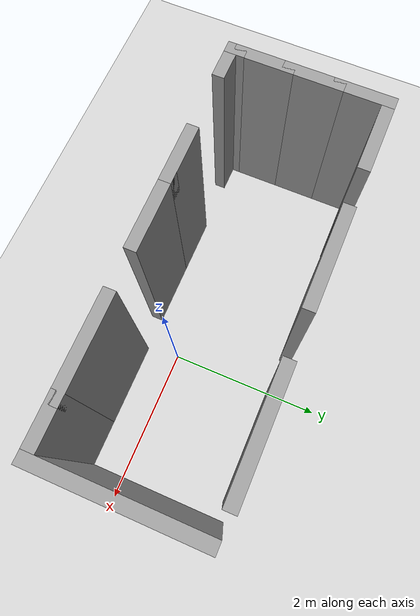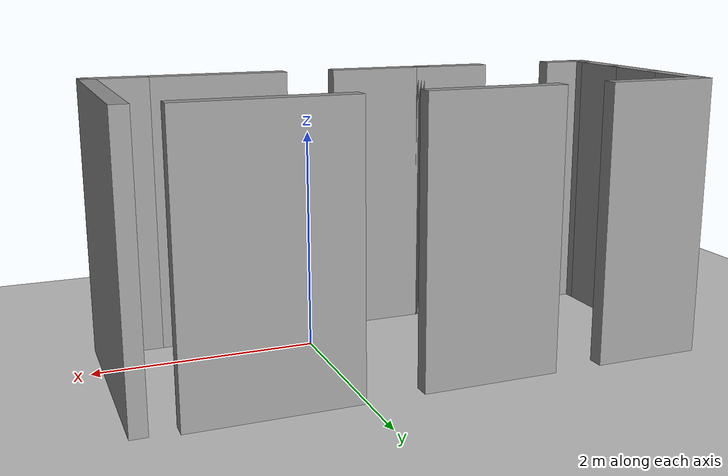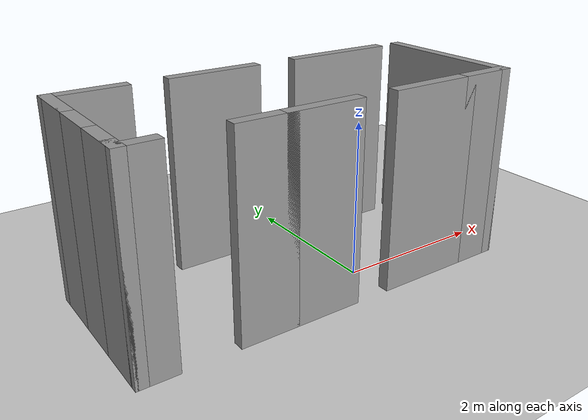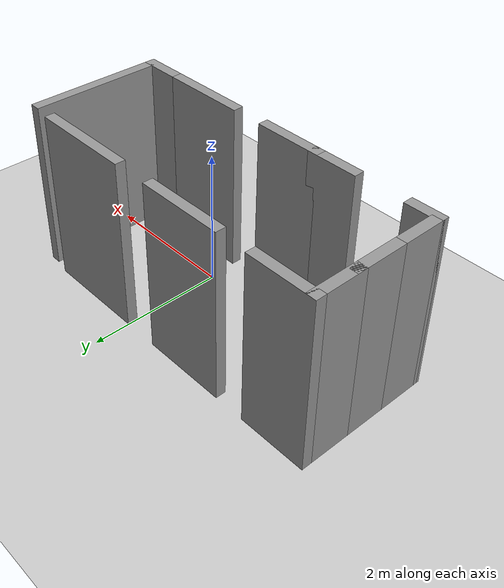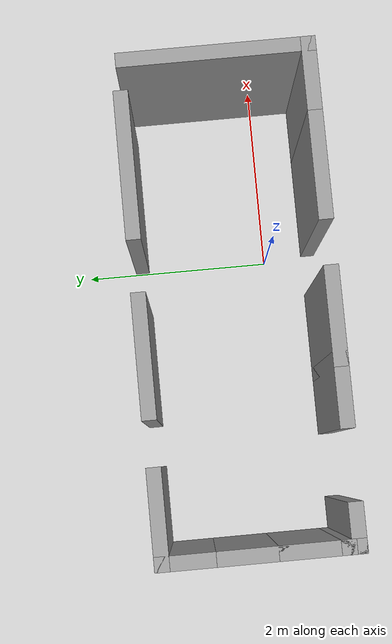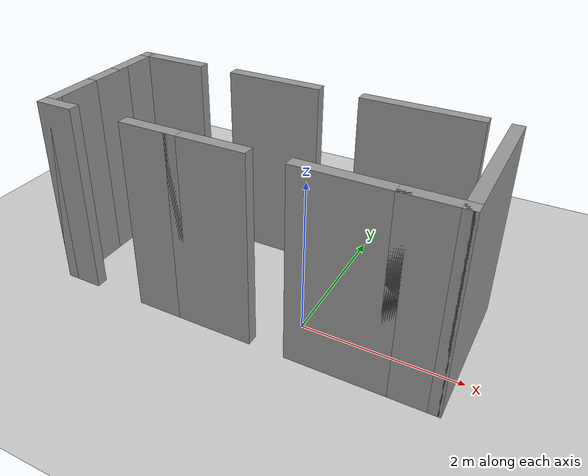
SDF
<sdf version="1.7">
 <world name="default">
  <light name="sun" type="directional">
   <pose>0 0 10 0 -0 0</pose>
   <diffuse>0.8 0.8 0.8 1</diffuse>
   <specular>0.2 0.2 0.2 1</specular>
   <attenuation>
    <range>1000</range>
    <constant>0.9</constant>
    <linear>0.01</linear>
    <quadratic>0.001</quadratic>
   </attenuation>
   <direction>-0.5 0.1 -0.9</direction>
   <spot><inner_angle>0</inner_angle><outer_angle>0</outer_angle><falloff>0</falloff></spot>
  </light>
  <model name="ground_plane">
   <static>1</static>
   <link name="link">
    <collision name="collision">
     <geometry><plane><normal>0 0 1</normal><size>100 100</size></plane></geometry>
     <surface>
      <contact><collide_bitmask>65535</collide_bitmask></contact>
      <friction><ode><mu>100</mu><mu2>50</mu2></ode></friction>
     </surface>
    </collision>
    <visual name="visual">
     <cast_shadows>0</cast_shadows>
     <geometry><plane><normal>0 0 1</normal><size>100 100</size></plane></geometry>
     <material>
      <script><uri>file://media/materials/scripts/gazebo.material</uri><name>Gazebo/Grey</name></script>
     </material>
    </visual>
   </link>
  </model>
  <gravity>0 0 -9.8</gravity>
  <magnetic_field>6e-06 2.3e-05 -4.2e-05</magnetic_field>
  <atmosphere type="adiabatic"/>
  <physics type="ode">
   <max_step_size>0.001</max_step_size>
   <real_time_factor>1</real_time_factor>
   <real_time_update_rate>1000</real_time_update_rate>
  </physics>
  <scene><ambient>0.4 0.4 0.4 1</ambient><background>0.7 0.7 0.7 1</background><shadows>1</shadows></scene>
  <spherical_coordinates>
   <surface_model>EARTH_WGS84</surface_model>
   <latitude_deg>0</latitude_deg>
   <longitude_deg>0</longitude_deg>
   <elevation>0</elevation>
   <heading_deg>0</heading_deg>
  </spherical_coordinates>
  <model name="scenario_1">
   <pose>-0.652605 0.448887 0 0 -0 0</pose>
   <link name="Wall_10">
    <collision name="Wall_10_Collision">
     <geometry><box><size>1 0.15 2.5</size></box></geometry>
     <pose>0 0 1.25 0 -0 0</pose>
    </collision>
    <visual name="Wall_10_Visual">
     <pose>0 0 1.25 0 -0 0</pose>
     <geometry><box><size>1 0.15 2.5</size></box></geometry>
     <material>
      <script><uri>file://media/materials/scripts/gazebo.material</uri><name>Gazebo/Grey</name></script>
      <ambient>1 1 1 1</ambient>
     </material>
     <meta><layer>0</layer></meta>
    </visual>
    <pose>-2.05 0.95 0 0 -0 3.14159</pose>
   </link>
   <link name="Wall_11">
    <collision name="Wall_11_Collision">
     <geometry><box><size>0.75 0.15 2.5</size></box></geometry>
     <pose>0 0 1.25 0 -0 0</pose>
    </collision>
    <visual name="Wall_11_Visual">
     <pose>0 0 1.25 0 -0 0</pose>
     <geometry><box><size>0.75 0.15 2.5</size></box></geometry>
     <material>
      <script><uri>file://media/materials/scripts/gazebo.material</uri><name>Gazebo/Grey</name></script>
      <ambient>1 1 1 1</ambient>
     </material>
     <meta><layer>0</layer></meta>
    </visual>
    <pose>-2.475 0.65 0 0 -0 -1.5708</pose>
   </link>
   <link name="Wall_12">
    <collision name="Wall_12_Collision">
     <geometry><box><size>0.75 0.15 2.5</size></box></geometry>
     <pose>0 0 1.25 0 -0 0</pose>
    </collision>
    <visual name="Wall_12_Visual">
     <pose>0 0 1.25 0 -0 0</pose>
     <geometry><box><size>0.75 0.15 2.5</size></box></geometry>
     <material>
      <script><uri>file://media/materials/scripts/gazebo.material</uri><name>Gazebo/Grey</name></script>
      <ambient>1 1 1 1</ambient>
     </material>
     <meta><layer>0</layer></meta>
    </visual>
    <pose>-2.475 0.05 0 0 -0 -1.5708</pose>
   </link>
   <link name="Wall_13">
    <collision name="Wall_13_Collision">
     <geometry><box><size>0.75 0.15 2.5</size></box></geometry>
     <pose>0 0 1.25 0 -0 0</pose>
    </collision>
    <visual name="Wall_13_Visual">
     <pose>0 0 1.25 0 -0 0</pose>
     <geometry><box><size>0.75 0.15 2.5</size></box></geometry>
     <material>
      <script><uri>file://media/materials/scripts/gazebo.material</uri><name>Gazebo/Grey</name></script>
      <ambient>1 1 1 1</ambient>
     </material>
     <meta><layer>0</layer></meta>
    </visual>
    <pose>-2.475 -0.55 0 0 -0 -1.5708</pose>
   </link>
   <link name="Wall_14">
    <collision name="Wall_14_Collision">
     <geometry><box><size>0.25 0.15 2.5</size></box></geometry>
     <pose>0 0 1.25 0 -0 0</pose>
    </collision>
    <visual name="Wall_14_Visual">
     <pose>0 0 1.25 0 -0 0</pose>
     <geometry><box><size>0.25 0.15 2.5</size></box></geometry>
     <material>
      <script><uri>file://media/materials/scripts/gazebo.material</uri><name>Gazebo/Grey</name></script>
      <ambient>1 1 1 1</ambient>
     </material>
     <meta><layer>0</layer></meta>
    </visual>
    <pose>-2.475 -0.9 0 0 -0 -1.5708</pose>
   </link>
   <link name="Wall_15">
    <collision name="Wall_15_Collision">
     <geometry><box><size>0.5 0.15 2.5</size></box></geometry>
     <pose>0 0 1.25 0 -0 0</pose>
    </collision>
    <visual name="Wall_15_Visual">
     <pose>0 0 1.25 0 -0 0</pose>
     <geometry><box><size>0.5 0.15 2.5</size></box></geometry>
     <material>
      <script><uri>file://media/materials/scripts/gazebo.material</uri><name>Gazebo/Grey</name></script>
      <ambient>1 1 1 1</ambient>
     </material>
     <meta><layer>0</layer></meta>
    </visual>
    <pose>-2.3 -0.95 0 0 -0 0</pose>
   </link>
   <link name="Wall_17">
    <collision name="Wall_17_Collision">
     <geometry><box><size>0.75 0.15 2.5</size></box></geometry>
     <pose>0 0 1.25 0 -0 0</pose>
    </collision>
    <visual name="Wall_17_Visual">
     <pose>0 0 1.25 0 -0 0</pose>
     <geometry><box><size>0.75 0.15 2.5</size></box></geometry>
     <material>
      <script><uri>file://media/materials/scripts/gazebo.material</uri><name>Gazebo/Grey</name></script>
      <ambient>1 1 1 1</ambient>
     </material>
     <meta><layer>0</layer></meta>
    </visual>
    <pose>-0.975 -0.95 0 0 -0 0</pose>
   </link>
   <link name="Wall_18">
    <collision name="Wall_18_Collision">
     <geometry><box><size>1 0.15 2.5</size></box></geometry>
     <pose>0 0 1.25 0 -0 0</pose>
    </collision>
    <visual name="Wall_18_Visual">
     <pose>0 0 1.25 0 -0 0</pose>
     <geometry><box><size>1 0.15 2.5</size></box></geometry>
     <material>
      <script><uri>file://media/materials/scripts/gazebo.material</uri><name>Gazebo/Grey</name></script>
      <ambient>1 1 1 1</ambient>
     </material>
     <meta><layer>0</layer></meta>
    </visual>
    <pose>-0.25 -0.95 0 0 -0 0</pose>
   </link>
   <link name="Wall_20">
    <collision name="Wall_20_Collision">
     <geometry><box><size>1.25 0.15 2.5</size></box></geometry>
     <pose>0 0 1.25 0 -0 0</pose>
    </collision>
    <visual name="Wall_20_Visual">
     <pose>0 0 1.25 0 -0 0</pose>
     <geometry><box><size>1.25 0.15 2.5</size></box></geometry>
     <material>
      <script><uri>file://media/materials/scripts/gazebo.material</uri><name>Gazebo/Grey</name></script>
      <ambient>1 1 1 1</ambient>
     </material>
     <meta><layer>0</layer></meta>
    </visual>
    <pose>1.325 -0.95 0 0 -0 0</pose>
   </link>
   <link name="Wall_21">
    <collision name="Wall_21_Collision">
     <geometry><box><size>0.75 0.15 2.5</size></box></geometry>
     <pose>0 0 1.25 0 -0 0</pose>
    </collision>
    <visual name="Wall_21_Visual">
     <pose>0 0 1.25 0 -0 0</pose>
     <geometry><box><size>0.75 0.15 2.5</size></box></geometry>
     <material>
      <script><uri>file://media/materials/scripts/gazebo.material</uri><name>Gazebo/Grey</name></script>
      <ambient>1 1 1 1</ambient>
     </material>
     <meta><layer>0</layer></meta>
    </visual>
    <pose>2.175 -0.95 0 0 -0 0</pose>
   </link>
   <link name="Wall_22">
    <collision name="Wall_22_Collision">
     <geometry><box><size>2 0.15 2.5</size></box></geometry>
     <pose>0 0 1.25 0 -0 0</pose>
    </collision>
    <visual name="Wall_22_Visual">
     <pose>0 0 1.25 0 -0 0</pose>
     <geometry><box><size>2 0.15 2.5</size></box></geometry>
     <material>
      <script><uri>file://media/materials/scripts/gazebo.material</uri><name>Gazebo/Grey</name></script>
      <ambient>1 1 1 1</ambient>
     </material>
     <meta><layer>0</layer></meta>
    </visual>
    <pose>2.475 -0.025 0 0 -0 1.5708</pose>
   </link>
   <link name="Wall_6">
    <collision name="Wall_6_Collision">
     <geometry><box><size>1.5 0.15 2.5</size></box></geometry>
     <pose>0 0 1.25 0 -0 0</pose>
    </collision>
    <visual name="Wall_6_Visual">
     <pose>0 0 1.25 0 -0 0</pose>
     <geometry><box><size>1.5 0.15 2.5</size></box></geometry>
     <material>
      <script><uri>file://media/materials/scripts/gazebo.material</uri><name>Gazebo/Grey</name></script>
      <ambient>1 1 1 1</ambient>
     </material>
     <meta><layer>0</layer></meta>
    </visual>
    <pose>1.41895 0.95 0 0 -0 3.14159</pose>
   </link>
   <link name="Wall_8">
    <collision name="Wall_8_Collision">
     <geometry><box><size>1.25 0.15 2.5</size></box></geometry>
     <pose>0 0 1.25 0 -0 0</pose>
    </collision>
    <visual name="Wall_8_Visual">
     <pose>0 0 1.25 0 -0 0</pose>
     <geometry><box><size>1.25 0.15 2.5</size></box></geometry>
     <material>
      <script><uri>file://media/materials/scripts/gazebo.material</uri><name>Gazebo/Grey</name></script>
      <ambient>1 1 1 1</ambient>
     </material>
     <meta><layer>0</layer></meta>
    </visual>
    <pose>-0.475 0.95 0 0 -0 3.14159</pose>
   </link>
   <static>1</static>
  </model>
 </world>
</sdf>
